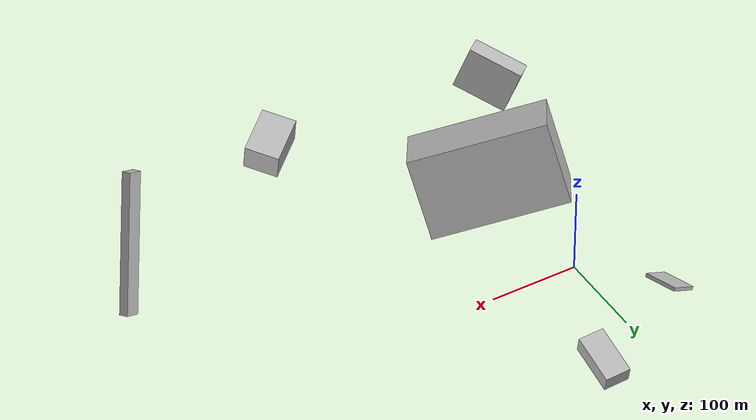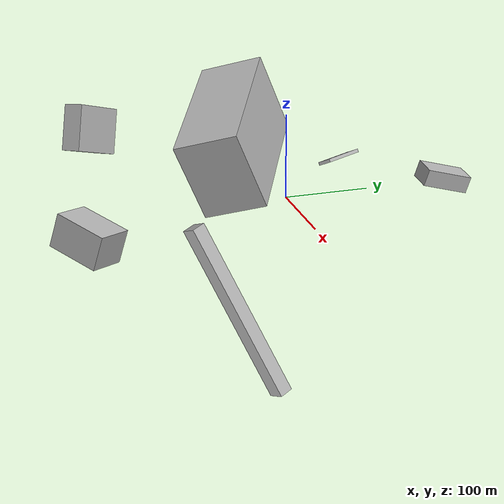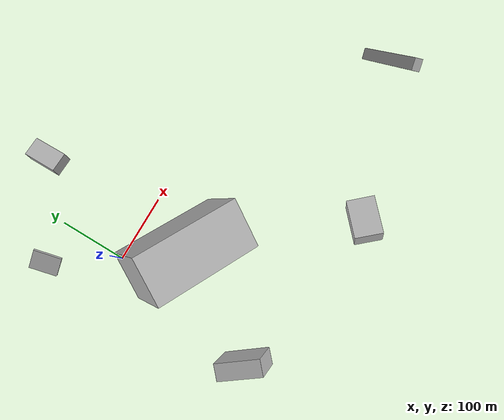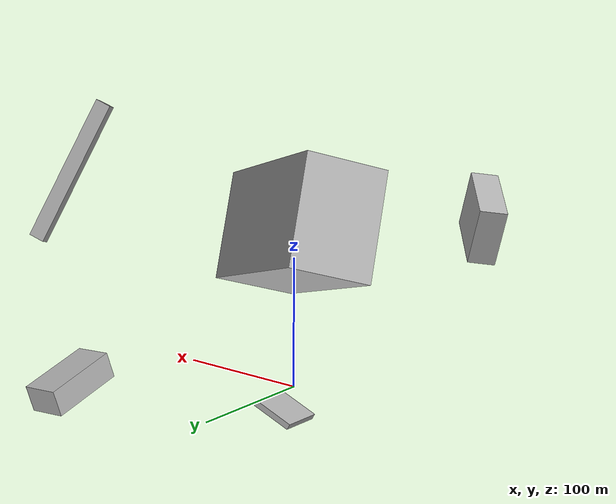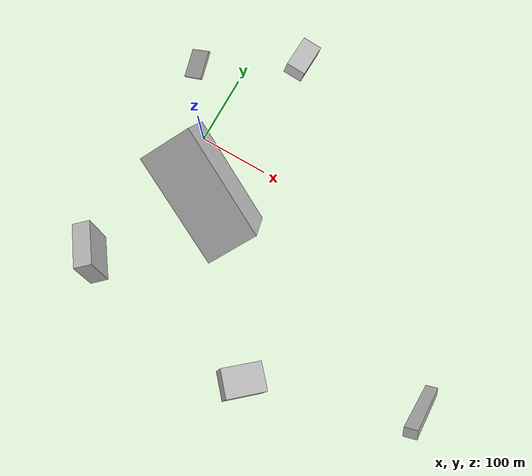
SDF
<sdf version="1.6">
 <world name="default">
  <scene>
   <sky><clouds><speed>12</speed></clouds></sky>
   <ambient>0.4 0.4 0.4 1</ambient>
   <background>0.7 0.7 0.7 1</background>
   <shadows>1</shadows>
  </scene>
  <gravity>0 0 -9.8066</gravity>
  <magnetic_field>6e-06 2.3e-05 -4.2e-05</magnetic_field>
  <physics default="0" name="default_physics" type="ode">
   <ode>
    <solver>
     <type>quick</type>
     <iters>10</iters>
     <sor>1.0</sor>
     <use_dynamic_moi_rescaling>0</use_dynamic_moi_rescaling>
    </solver>
    <constraints>
     <cfm>0</cfm>
     <erp>0.2</erp>
     <contact_max_correcting_vel>100</contact_max_correcting_vel>
     <contact_surface_layer>0.001</contact_surface_layer>
    </constraints>
   </ode>
   <max_step_size>0.004</max_step_size>
   <real_time_factor>1</real_time_factor>
   <real_time_update_rate>250</real_time_update_rate>
  </physics>
  <light name="sun" type="directional">
   <pose>0 0 10 0 0 0</pose>
   <diffuse>0.8 0.8 0.8 1</diffuse>
   <specular>0.2 0.2 0.2 1</specular>
   <attenuation>
    <range>1000</range>
    <constant>0.9</constant>
    <linear>0.01</linear>
    <quadratic>0.001</quadratic>
   </attenuation>
   <direction>-0.5 0.1 -0.9</direction>
  </light>
  <model name="building_1">
   <static>0</static>
   <pose>234.904621242281 -246.87448807971006 65.08034640646503 -0.5850862224940017 -1.288130183804658 1.2912598923532799</pose>
   <link name="link">
    <gravity>0</gravity>
    <pose>0 0 26.5 0 0 0</pose>
    <collision name="collision"><geometry><box><size>33 38 53</size></box></geometry></collision>
    <visual name="visual">
     <cast_shadows>0</cast_shadows>
     <geometry><box><size>33 38 53</size></box></geometry>
     <material>
      <script>
       <uri>model://HANNAS_wall/materials/scripts</uri>
       <uri>model://HANNAS_wall/materials/textures</uri>
       <name>vrc/HANNAS_wall</name>
      </script>
     </material>
    </visual>
   </link>
  </model>
  <model name="building_2">
   <static>0</static>
   <pose>69.90308560727121 188.9698587033401 24.70122665934238 0.2904824980415079 -1.2787095026581612 1.2697992301986205</pose>
   <link name="link">
    <gravity>0</gravity>
    <pose>0 0 27.0 0 0 0</pose>
    <collision name="collision"><geometry><box><size>19 28 54</size></box></geometry></collision>
    <visual name="visual">
     <cast_shadows>0</cast_shadows>
     <geometry><box><size>19 28 54</size></box></geometry>
     <material>
      <script>
       <uri>model://HANNAS_wall/materials/scripts</uri>
       <uri>model://HANNAS_wall/materials/textures</uri>
       <name>vrc/HANNAS_wall</name>
      </script>
     </material>
    </visual>
   </link>
  </model>
  <model name="building_3">
   <static>0</static>
   <pose>-47.00818339892138 -195.587024322542 85.07548679202411 -0.36199886356352023 -1.20617365740045 2.64562190736593</pose>
   <link name="link">
    <gravity>0</gravity>
    <pose>0 0 30.5 0 0 0</pose>
    <collision name="collision"><geometry><box><size>50 23 61</size></box></geometry></collision>
    <visual name="visual">
     <cast_shadows>0</cast_shadows>
     <geometry><box><size>50 23 61</size></box></geometry>
     <material>
      <script>
       <uri>model://HANNAS_wall/materials/scripts</uri>
       <uri>model://HANNAS_wall/materials/textures</uri>
       <name>vrc/HANNAS_wall</name>
      </script>
     </material>
    </visual>
   </link>
  </model>
  <model name="building_4">
   <static>0</static>
   <pose>121.52526881613159 -111.86231053904802 79.52059308359472 0.7791118808538114 -1.1548477499411647 -1.2948133854434267</pose>
   <link name="link">
    <gravity>0</gravity>
    <pose>0 0 75.0 0 0 0</pose>
    <collision name="collision"><geometry><box><size>90 69 150</size></box></geometry></collision>
    <visual name="visual">
     <cast_shadows>0</cast_shadows>
     <geometry><box><size>90 69 150</size></box></geometry>
     <material>
      <script>
       <uri>model://HANNAS_wall/materials/scripts</uri>
       <uri>model://HANNAS_wall/materials/textures</uri>
       <name>vrc/HANNAS_wall</name>
      </script>
     </material>
    </visual>
   </link>
  </model>
  <model name="building_5">
   <static>0</static>
   <pose>421.2379282458554 -177.7528192139244 85.7878033537485 1.8691857182140095 -0.3931583815704783 0.29226315390193275</pose>
   <link name="link">
    <gravity>0</gravity>
    <pose>0 0 5.5 0 0 0</pose>
    <collision name="collision"><geometry><box><size>16 150 11</size></box></geometry></collision>
    <visual name="visual">
     <cast_shadows>0</cast_shadows>
     <geometry><box><size>16 150 11</size></box></geometry>
     <material>
      <script>
       <uri>model://HANNAS_wall/materials/scripts</uri>
       <uri>model://HANNAS_wall/materials/textures</uri>
       <name>vrc/HANNAS_wall</name>
      </script>
     </material>
    </visual>
   </link>
  </model>
  <model name="building_6">
   <static>0</static>
   <pose>-60.824628441323796 86.64019602712088 21.671249450942064 -2.982487622698168 -0.45436995250809453 0.15281706928188662</pose>
   <link name="link">
    <gravity>0</gravity>
    <pose>0 0 2.0 0 0 0</pose>
    <collision name="collision"><geometry><box><size>29 41 4</size></box></geometry></collision>
    <visual name="visual">
     <cast_shadows>0</cast_shadows>
     <geometry><box><size>29 41 4</size></box></geometry>
     <material>
      <script>
       <uri>model://HANNAS_wall/materials/scripts</uri>
       <uri>model://HANNAS_wall/materials/textures</uri>
       <name>vrc/HANNAS_wall</name>
      </script>
     </material>
    </visual>
   </link>
  </model>
 </world>
</sdf>
